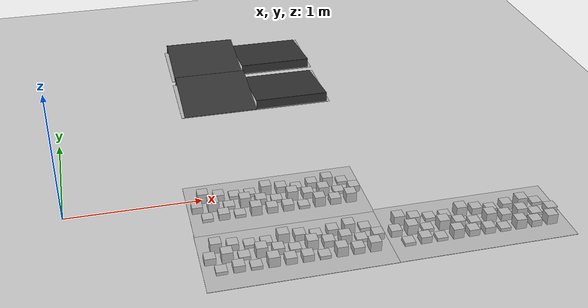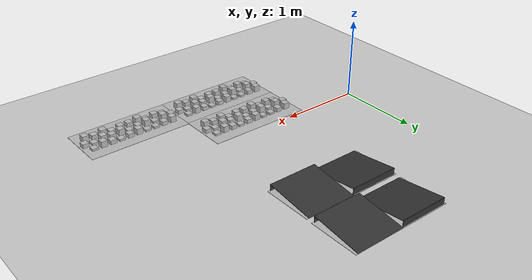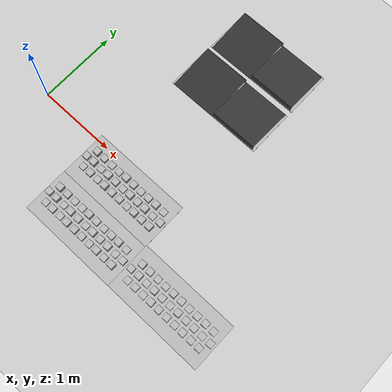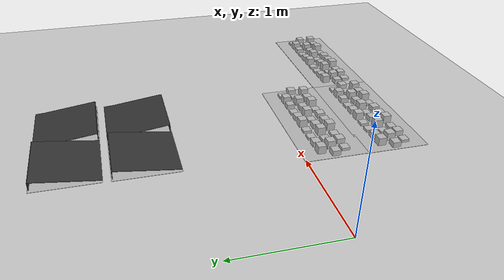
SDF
<sdf version="1.7">
 <world name="default">
  <model name="ground_plane">
   <static>1</static>
   <link name="link">
    <collision name="collision">
     <geometry><plane><normal>0 0 1</normal><size>100 100</size></plane></geometry>
     <surface>
      <contact><collide_bitmask>65535</collide_bitmask></contact>
      <friction><ode><mu>100</mu><mu2>50</mu2></ode></friction>
     </surface>
    </collision>
    <visual name="visual">
     <cast_shadows>0</cast_shadows>
     <geometry><plane><normal>0 0 1</normal><size>100 100</size></plane></geometry>
     <material>
      <script><uri>file://media/materials/scripts/gazebo.material</uri><name>Gazebo/Grey</name></script>
     </material>
    </visual>
   </link>
  </model>
  <model name="frc2016_roughterrain">
   <static>1</static>
   <link name="link">
    <visual name="platform">
     <pose>0 0 0.08269 0 -0 0</pose>
     <geometry><box><size>1.27 0.5969 0.003175</size></box></geometry>
    </visual>
    <collision name="platform">
     <pose>0 0 0.08269 0 -0 0</pose>
     <geometry><box><size>1.27 0.5969 0.003175</size></box></geometry>
    </collision>
    <visual name="row1_block1_sm">
     <pose>0.51435 0.1143 0.09698 0 -0 0</pose>
     <geometry><box><size>0.0762 0.0762 0.0254</size></box></geometry>
    </visual>
    <collision name="row1_block1_sm">
     <pose>0.51435 0.1143 0.09698 0 -0 0</pose>
     <geometry><box><size>0.0762 0.0762 0.0254</size></box></geometry>
    </collision>
    <visual name="row1_block2_lg">
     <pose>0.40005 0.1143 0.12238 0 -0 0</pose>
     <geometry><box><size>0.0762 0.0762 0.0762</size></box></geometry>
    </visual>
    <collision name="row1_block2_lg">
     <pose>0.40005 0.1143 0.12238 0 -0 0</pose>
     <geometry><box><size>0.0762 0.0762 0.0762</size></box></geometry>
    </collision>
    <visual name="row1_block3_md">
     <pose>0.28575 0.1143 0.10968 0 -0 0</pose>
     <geometry><box><size>0.0762 0.0762 0.0508</size></box></geometry>
    </visual>
    <collision name="row1_block3_md">
     <pose>0.28575 0.1143 0.10968 0 -0 0</pose>
     <geometry><box><size>0.0762 0.0762 0.0508</size></box></geometry>
    </collision>
    <visual name="row1_block4_sm">
     <pose>0.17145 0.1143 0.09698 0 -0 0</pose>
     <geometry><box><size>0.0762 0.0762 0.0254</size></box></geometry>
    </visual>
    <collision name="row1_block4_sm">
     <pose>0.17145 0.1143 0.09698 0 -0 0</pose>
     <geometry><box><size>0.0762 0.0762 0.0254</size></box></geometry>
    </collision>
    <visual name="row1_block5_md">
     <pose>0.05715 0.1143 0.10968 0 -0 0</pose>
     <geometry><box><size>0.0762 0.0762 0.0508</size></box></geometry>
    </visual>
    <collision name="row1_block5_md">
     <pose>0.05715 0.1143 0.10968 0 -0 0</pose>
     <geometry><box><size>0.0762 0.0762 0.0508</size></box></geometry>
    </collision>
    <visual name="row1_block6_lg">
     <pose>-0.05715 0.1143 0.12238 0 -0 0</pose>
     <geometry><box><size>0.0762 0.0762 0.0762</size></box></geometry>
    </visual>
    <collision name="row1_block6_lg">
     <pose>-0.05715 0.1143 0.12238 0 -0 0</pose>
     <geometry><box><size>0.0762 0.0762 0.0762</size></box></geometry>
    </collision>
    <visual name="row1_block7_sm">
     <pose>-0.17145 0.1143 0.09698 0 -0 0</pose>
     <geometry><box><size>0.0762 0.0762 0.0254</size></box></geometry>
    </visual>
    <collision name="row1_block7_sm">
     <pose>-0.17145 0.1143 0.09698 0 -0 0</pose>
     <geometry><box><size>0.0762 0.0762 0.0254</size></box></geometry>
    </collision>
    <visual name="row1_block8_sm">
     <pose>-0.28575 0.1143 0.09698 0 -0 0</pose>
     <geometry><box><size>0.0762 0.0762 0.0254</size></box></geometry>
    </visual>
    <collision name="row1_block8_sm">
     <pose>-0.28575 0.1143 0.09698 0 -0 0</pose>
     <geometry><box><size>0.0762 0.0762 0.0254</size></box></geometry>
    </collision>
    <visual name="row1_block9_md">
     <pose>-0.40005 0.1143 0.10968 0 -0 0</pose>
     <geometry><box><size>0.0762 0.0762 0.0508</size></box></geometry>
    </visual>
    <collision name="row1_block9_md">
     <pose>-0.40005 0.1143 0.10968 0 -0 0</pose>
     <geometry><box><size>0.0762 0.0762 0.0508</size></box></geometry>
    </collision>
    <visual name="row1_block10_lg">
     <pose>-0.51435 0.1143 0.12238 0 -0 0</pose>
     <geometry><box><size>0.0762 0.0762 0.0762</size></box></geometry>
    </visual>
    <collision name="row1_block10_lg">
     <pose>-0.51435 0.1143 0.12238 0 -0 0</pose>
     <geometry><box><size>0.0762 0.0762 0.0762</size></box></geometry>
    </collision>
    <visual name="row2_block1_md">
     <pose>0.5715 0 0.10968 0 -0 0</pose>
     <geometry><box><size>0.0762 0.0762 0.0508</size></box></geometry>
    </visual>
    <collision name="row2_block1_md">
     <pose>0.5715 0 0.10968 0 -0 0</pose>
     <geometry><box><size>0.0762 0.0762 0.0508</size></box></geometry>
    </collision>
    <visual name="row2_block2_sm">
     <pose>0.4572 0 0.09698 0 -0 0</pose>
     <geometry><box><size>0.0762 0.0762 0.0254</size></box></geometry>
    </visual>
    <collision name="row2_block2_sm">
     <pose>0.4572 0 0.09698 0 -0 0</pose>
     <geometry><box><size>0.0762 0.0762 0.0254</size></box></geometry>
    </collision>
    <visual name="row2_block3_lg">
     <pose>0.3429 0 0.12238 0 -0 0</pose>
     <geometry><box><size>0.0762 0.0762 0.0762</size></box></geometry>
    </visual>
    <collision name="row2_block3_lg">
     <pose>0.3429 0 0.12238 0 -0 0</pose>
     <geometry><box><size>0.0762 0.0762 0.0762</size></box></geometry>
    </collision>
    <visual name="row2_block4_md">
     <pose>0.2286 0 0.10968 0 -0 0</pose>
     <geometry><box><size>0.0762 0.0762 0.0508</size></box></geometry>
    </visual>
    <collision name="row2_block4_md">
     <pose>0.2286 0 0.10968 0 -0 0</pose>
     <geometry><box><size>0.0762 0.0762 0.0508</size></box></geometry>
    </collision>
    <visual name="row2_block5_lg">
     <pose>0.1143 0 0.12238 0 -0 0</pose>
     <geometry><box><size>0.0762 0.0762 0.0762</size></box></geometry>
    </visual>
    <collision name="row2_block5_lg">
     <pose>0.1143 0 0.12238 0 -0 0</pose>
     <geometry><box><size>0.0762 0.0762 0.0762</size></box></geometry>
    </collision>
    <visual name="row2_block6_sm">
     <pose>0 0 0.09698 0 -0 0</pose>
     <geometry><box><size>0.0762 0.0762 0.0254</size></box></geometry>
    </visual>
    <collision name="row2_block6_sm">
     <pose>0 0 0.09698 0 -0 0</pose>
     <geometry><box><size>0.0762 0.0762 0.0254</size></box></geometry>
    </collision>
    <visual name="row2_block7_md">
     <pose>-0.1143 0 0.10968 0 -0 0</pose>
     <geometry><box><size>0.0762 0.0762 0.0508</size></box></geometry>
    </visual>
    <collision name="row2_block7_md">
     <pose>-0.1143 0 0.10968 0 -0 0</pose>
     <geometry><box><size>0.0762 0.0762 0.0508</size></box></geometry>
    </collision>
    <visual name="row2_block8_lg">
     <pose>-0.2286 0 0.12238 0 -0 0</pose>
     <geometry><box><size>0.0762 0.0762 0.0762</size></box></geometry>
    </visual>
    <collision name="row2_block8_lg">
     <pose>-0.2286 0 0.12238 0 -0 0</pose>
     <geometry><box><size>0.0762 0.0762 0.0762</size></box></geometry>
    </collision>
    <visual name="row2_block9_sm">
     <pose>-0.3429 0 0.09698 0 -0 0</pose>
     <geometry><box><size>0.0762 0.0762 0.0254</size></box></geometry>
    </visual>
    <collision name="row2_block9_sm">
     <pose>-0.3429 0 0.09698 0 -0 0</pose>
     <geometry><box><size>0.0762 0.0762 0.0254</size></box></geometry>
    </collision>
    <visual name="row2_block10_lg">
     <pose>-0.4572 0 0.12238 0 -0 0</pose>
     <geometry><box><size>0.0762 0.0762 0.0762</size></box></geometry>
    </visual>
    <collision name="row2_block10_lg">
     <pose>-0.4572 0 0.12238 0 -0 0</pose>
     <geometry><box><size>0.0762 0.0762 0.0762</size></box></geometry>
    </collision>
    <visual name="row2_block11_md">
     <pose>-0.5715 0 0.10968 0 -0 0</pose>
     <geometry><box><size>0.0762 0.0762 0.0508</size></box></geometry>
    </visual>
    <collision name="row2_block11_md">
     <pose>-0.5715 0 0.10968 0 -0 0</pose>
     <geometry><box><size>0.0762 0.0762 0.0508</size></box></geometry>
    </collision>
    <visual name="row3_block1_lg">
     <pose>0.51435 -0.1143 0.12238 0 -0 0</pose>
     <geometry><box><size>0.0762 0.0762 0.0762</size></box></geometry>
    </visual>
    <collision name="row3_block1_lg">
     <pose>0.51435 -0.1143 0.12238 0 -0 0</pose>
     <geometry><box><size>0.0762 0.0762 0.0762</size></box></geometry>
    </collision>
    <visual name="row3_block2_md">
     <pose>0.40005 -0.1143 0.10968 0 -0 0</pose>
     <geometry><box><size>0.0762 0.0762 0.0508</size></box></geometry>
    </visual>
    <collision name="row3_block2_md">
     <pose>0.40005 -0.1143 0.10968 0 -0 0</pose>
     <geometry><box><size>0.0762 0.0762 0.0508</size></box></geometry>
    </collision>
    <visual name="row3_block3_lg">
     <pose>0.28575 -0.1143 0.12238 0 -0 0</pose>
     <geometry><box><size>0.0762 0.0762 0.0762</size></box></geometry>
    </visual>
    <collision name="row3_block3_lg">
     <pose>0.28575 -0.1143 0.12238 0 -0 0</pose>
     <geometry><box><size>0.0762 0.0762 0.0762</size></box></geometry>
    </collision>
    <visual name="row3_block4_sm">
     <pose>0.17145 -0.1143 0.09698 0 -0 0</pose>
     <geometry><box><size>0.0762 0.0762 0.0254</size></box></geometry>
    </visual>
    <collision name="row3_block4_sm">
     <pose>0.17145 -0.1143 0.09698 0 -0 0</pose>
     <geometry><box><size>0.0762 0.0762 0.0254</size></box></geometry>
    </collision>
    <visual name="row3_block5_md">
     <pose>0.05715 -0.1143 0.10968 0 -0 0</pose>
     <geometry><box><size>0.0762 0.0762 0.0508</size></box></geometry>
    </visual>
    <collision name="row3_block5_md">
     <pose>0.05715 -0.1143 0.10968 0 -0 0</pose>
     <geometry><box><size>0.0762 0.0762 0.0508</size></box></geometry>
    </collision>
    <visual name="row3_block6_md">
     <pose>-0.05715 -0.1143 0.10968 0 -0 0</pose>
     <geometry><box><size>0.0762 0.0762 0.0508</size></box></geometry>
    </visual>
    <collision name="row3_block6_md">
     <pose>-0.05715 -0.1143 0.10968 0 -0 0</pose>
     <geometry><box><size>0.0762 0.0762 0.0508</size></box></geometry>
    </collision>
    <visual name="row3_block7_lg">
     <pose>-0.17145 -0.1143 0.12238 0 -0 0</pose>
     <geometry><box><size>0.0762 0.0762 0.0762</size></box></geometry>
    </visual>
    <collision name="row3_block7_lg">
     <pose>-0.17145 -0.1143 0.12238 0 -0 0</pose>
     <geometry><box><size>0.0762 0.0762 0.0762</size></box></geometry>
    </collision>
    <visual name="row3_block8_sm">
     <pose>-0.28575 -0.1143 0.09698 0 -0 0</pose>
     <geometry><box><size>0.0762 0.0762 0.0254</size></box></geometry>
    </visual>
    <collision name="row3_block8_sm">
     <pose>-0.28575 -0.1143 0.09698 0 -0 0</pose>
     <geometry><box><size>0.0762 0.0762 0.0254</size></box></geometry>
    </collision>
    <visual name="row3_block9_md">
     <pose>-0.40005 -0.1143 0.10968 0 -0 0</pose>
     <geometry><box><size>0.0762 0.0762 0.0508</size></box></geometry>
    </visual>
    <collision name="row3_block9_md">
     <pose>-0.40005 -0.1143 0.10968 0 -0 0</pose>
     <geometry><box><size>0.0762 0.0762 0.0508</size></box></geometry>
    </collision>
    <visual name="row3_block10_sm">
     <pose>-0.51435 -0.1143 0.09698 0 -0 0</pose>
     <geometry><box><size>0.0762 0.0762 0.0254</size></box></geometry>
    </visual>
    <collision name="row3_block10_sm">
     <pose>-0.51435 -0.1143 0.09698 0 -0 0</pose>
     <geometry><box><size>0.0762 0.0762 0.0254</size></box></geometry>
    </collision>
   </link>
   <pose>1.50047 -0.238408 0 0 -0 0</pose>
  </model>
  <model name="frc2016_roughterrain_0">
   <static>1</static>
   <link name="link">
    <visual name="platform">
     <pose>0 0 0.08269 0 -0 0</pose>
     <geometry><box><size>1.27 0.5969 0.003175</size></box></geometry>
    </visual>
    <collision name="platform">
     <pose>0 0 0.08269 0 -0 0</pose>
     <geometry><box><size>1.27 0.5969 0.003175</size></box></geometry>
    </collision>
    <visual name="row1_block1_sm">
     <pose>0.51435 0.1143 0.09698 0 -0 0</pose>
     <geometry><box><size>0.0762 0.0762 0.0254</size></box></geometry>
    </visual>
    <collision name="row1_block1_sm">
     <pose>0.51435 0.1143 0.09698 0 -0 0</pose>
     <geometry><box><size>0.0762 0.0762 0.0254</size></box></geometry>
    </collision>
    <visual name="row1_block2_lg">
     <pose>0.40005 0.1143 0.12238 0 -0 0</pose>
     <geometry><box><size>0.0762 0.0762 0.0762</size></box></geometry>
    </visual>
    <collision name="row1_block2_lg">
     <pose>0.40005 0.1143 0.12238 0 -0 0</pose>
     <geometry><box><size>0.0762 0.0762 0.0762</size></box></geometry>
    </collision>
    <visual name="row1_block3_md">
     <pose>0.28575 0.1143 0.10968 0 -0 0</pose>
     <geometry><box><size>0.0762 0.0762 0.0508</size></box></geometry>
    </visual>
    <collision name="row1_block3_md">
     <pose>0.28575 0.1143 0.10968 0 -0 0</pose>
     <geometry><box><size>0.0762 0.0762 0.0508</size></box></geometry>
    </collision>
    <visual name="row1_block4_sm">
     <pose>0.17145 0.1143 0.09698 0 -0 0</pose>
     <geometry><box><size>0.0762 0.0762 0.0254</size></box></geometry>
    </visual>
    <collision name="row1_block4_sm">
     <pose>0.17145 0.1143 0.09698 0 -0 0</pose>
     <geometry><box><size>0.0762 0.0762 0.0254</size></box></geometry>
    </collision>
    <visual name="row1_block5_md">
     <pose>0.05715 0.1143 0.10968 0 -0 0</pose>
     <geometry><box><size>0.0762 0.0762 0.0508</size></box></geometry>
    </visual>
    <collision name="row1_block5_md">
     <pose>0.05715 0.1143 0.10968 0 -0 0</pose>
     <geometry><box><size>0.0762 0.0762 0.0508</size></box></geometry>
    </collision>
    <visual name="row1_block6_lg">
     <pose>-0.05715 0.1143 0.12238 0 -0 0</pose>
     <geometry><box><size>0.0762 0.0762 0.0762</size></box></geometry>
    </visual>
    <collision name="row1_block6_lg">
     <pose>-0.05715 0.1143 0.12238 0 -0 0</pose>
     <geometry><box><size>0.0762 0.0762 0.0762</size></box></geometry>
    </collision>
    <visual name="row1_block7_sm">
     <pose>-0.17145 0.1143 0.09698 0 -0 0</pose>
     <geometry><box><size>0.0762 0.0762 0.0254</size></box></geometry>
    </visual>
    <collision name="row1_block7_sm">
     <pose>-0.17145 0.1143 0.09698 0 -0 0</pose>
     <geometry><box><size>0.0762 0.0762 0.0254</size></box></geometry>
    </collision>
    <visual name="row1_block8_sm">
     <pose>-0.28575 0.1143 0.09698 0 -0 0</pose>
     <geometry><box><size>0.0762 0.0762 0.0254</size></box></geometry>
    </visual>
    <collision name="row1_block8_sm">
     <pose>-0.28575 0.1143 0.09698 0 -0 0</pose>
     <geometry><box><size>0.0762 0.0762 0.0254</size></box></geometry>
    </collision>
    <visual name="row1_block9_md">
     <pose>-0.40005 0.1143 0.10968 0 -0 0</pose>
     <geometry><box><size>0.0762 0.0762 0.0508</size></box></geometry>
    </visual>
    <collision name="row1_block9_md">
     <pose>-0.40005 0.1143 0.10968 0 -0 0</pose>
     <geometry><box><size>0.0762 0.0762 0.0508</size></box></geometry>
    </collision>
    <visual name="row1_block10_lg">
     <pose>-0.51435 0.1143 0.12238 0 -0 0</pose>
     <geometry><box><size>0.0762 0.0762 0.0762</size></box></geometry>
    </visual>
    <collision name="row1_block10_lg">
     <pose>-0.51435 0.1143 0.12238 0 -0 0</pose>
     <geometry><box><size>0.0762 0.0762 0.0762</size></box></geometry>
    </collision>
    <visual name="row2_block1_md">
     <pose>0.5715 0 0.10968 0 -0 0</pose>
     <geometry><box><size>0.0762 0.0762 0.0508</size></box></geometry>
    </visual>
    <collision name="row2_block1_md">
     <pose>0.5715 0 0.10968 0 -0 0</pose>
     <geometry><box><size>0.0762 0.0762 0.0508</size></box></geometry>
    </collision>
    <visual name="row2_block2_sm">
     <pose>0.4572 0 0.09698 0 -0 0</pose>
     <geometry><box><size>0.0762 0.0762 0.0254</size></box></geometry>
    </visual>
    <collision name="row2_block2_sm">
     <pose>0.4572 0 0.09698 0 -0 0</pose>
     <geometry><box><size>0.0762 0.0762 0.0254</size></box></geometry>
    </collision>
    <visual name="row2_block3_lg">
     <pose>0.3429 0 0.12238 0 -0 0</pose>
     <geometry><box><size>0.0762 0.0762 0.0762</size></box></geometry>
    </visual>
    <collision name="row2_block3_lg">
     <pose>0.3429 0 0.12238 0 -0 0</pose>
     <geometry><box><size>0.0762 0.0762 0.0762</size></box></geometry>
    </collision>
    <visual name="row2_block4_md">
     <pose>0.2286 0 0.10968 0 -0 0</pose>
     <geometry><box><size>0.0762 0.0762 0.0508</size></box></geometry>
    </visual>
    <collision name="row2_block4_md">
     <pose>0.2286 0 0.10968 0 -0 0</pose>
     <geometry><box><size>0.0762 0.0762 0.0508</size></box></geometry>
    </collision>
    <visual name="row2_block5_lg">
     <pose>0.1143 0 0.12238 0 -0 0</pose>
     <geometry><box><size>0.0762 0.0762 0.0762</size></box></geometry>
    </visual>
    <collision name="row2_block5_lg">
     <pose>0.1143 0 0.12238 0 -0 0</pose>
     <geometry><box><size>0.0762 0.0762 0.0762</size></box></geometry>
    </collision>
    <visual name="row2_block6_sm">
     <pose>0 0 0.09698 0 -0 0</pose>
     <geometry><box><size>0.0762 0.0762 0.0254</size></box></geometry>
    </visual>
    <collision name="row2_block6_sm">
     <pose>0 0 0.09698 0 -0 0</pose>
     <geometry><box><size>0.0762 0.0762 0.0254</size></box></geometry>
    </collision>
    <visual name="row2_block7_md">
     <pose>-0.1143 0 0.10968 0 -0 0</pose>
     <geometry><box><size>0.0762 0.0762 0.0508</size></box></geometry>
    </visual>
    <collision name="row2_block7_md">
     <pose>-0.1143 0 0.10968 0 -0 0</pose>
     <geometry><box><size>0.0762 0.0762 0.0508</size></box></geometry>
    </collision>
    <visual name="row2_block8_lg">
     <pose>-0.2286 0 0.12238 0 -0 0</pose>
     <geometry><box><size>0.0762 0.0762 0.0762</size></box></geometry>
    </visual>
    <collision name="row2_block8_lg">
     <pose>-0.2286 0 0.12238 0 -0 0</pose>
     <geometry><box><size>0.0762 0.0762 0.0762</size></box></geometry>
    </collision>
    <visual name="row2_block9_sm">
     <pose>-0.3429 0 0.09698 0 -0 0</pose>
     <geometry><box><size>0.0762 0.0762 0.0254</size></box></geometry>
    </visual>
    <collision name="row2_block9_sm">
     <pose>-0.3429 0 0.09698 0 -0 0</pose>
     <geometry><box><size>0.0762 0.0762 0.0254</size></box></geometry>
    </collision>
    <visual name="row2_block10_lg">
     <pose>-0.4572 0 0.12238 0 -0 0</pose>
     <geometry><box><size>0.0762 0.0762 0.0762</size></box></geometry>
    </visual>
    <collision name="row2_block10_lg">
     <pose>-0.4572 0 0.12238 0 -0 0</pose>
     <geometry><box><size>0.0762 0.0762 0.0762</size></box></geometry>
    </collision>
    <visual name="row2_block11_md">
     <pose>-0.5715 0 0.10968 0 -0 0</pose>
     <geometry><box><size>0.0762 0.0762 0.0508</size></box></geometry>
    </visual>
    <collision name="row2_block11_md">
     <pose>-0.5715 0 0.10968 0 -0 0</pose>
     <geometry><box><size>0.0762 0.0762 0.0508</size></box></geometry>
    </collision>
    <visual name="row3_block1_lg">
     <pose>0.51435 -0.1143 0.12238 0 -0 0</pose>
     <geometry><box><size>0.0762 0.0762 0.0762</size></box></geometry>
    </visual>
    <collision name="row3_block1_lg">
     <pose>0.51435 -0.1143 0.12238 0 -0 0</pose>
     <geometry><box><size>0.0762 0.0762 0.0762</size></box></geometry>
    </collision>
    <visual name="row3_block2_md">
     <pose>0.40005 -0.1143 0.10968 0 -0 0</pose>
     <geometry><box><size>0.0762 0.0762 0.0508</size></box></geometry>
    </visual>
    <collision name="row3_block2_md">
     <pose>0.40005 -0.1143 0.10968 0 -0 0</pose>
     <geometry><box><size>0.0762 0.0762 0.0508</size></box></geometry>
    </collision>
    <visual name="row3_block3_lg">
     <pose>0.28575 -0.1143 0.12238 0 -0 0</pose>
     <geometry><box><size>0.0762 0.0762 0.0762</size></box></geometry>
    </visual>
    <collision name="row3_block3_lg">
     <pose>0.28575 -0.1143 0.12238 0 -0 0</pose>
     <geometry><box><size>0.0762 0.0762 0.0762</size></box></geometry>
    </collision>
    <visual name="row3_block4_sm">
     <pose>0.17145 -0.1143 0.09698 0 -0 0</pose>
     <geometry><box><size>0.0762 0.0762 0.0254</size></box></geometry>
    </visual>
    <collision name="row3_block4_sm">
     <pose>0.17145 -0.1143 0.09698 0 -0 0</pose>
     <geometry><box><size>0.0762 0.0762 0.0254</size></box></geometry>
    </collision>
    <visual name="row3_block5_md">
     <pose>0.05715 -0.1143 0.10968 0 -0 0</pose>
     <geometry><box><size>0.0762 0.0762 0.0508</size></box></geometry>
    </visual>
    <collision name="row3_block5_md">
     <pose>0.05715 -0.1143 0.10968 0 -0 0</pose>
     <geometry><box><size>0.0762 0.0762 0.0508</size></box></geometry>
    </collision>
    <visual name="row3_block6_md">
     <pose>-0.05715 -0.1143 0.10968 0 -0 0</pose>
     <geometry><box><size>0.0762 0.0762 0.0508</size></box></geometry>
    </visual>
    <collision name="row3_block6_md">
     <pose>-0.05715 -0.1143 0.10968 0 -0 0</pose>
     <geometry><box><size>0.0762 0.0762 0.0508</size></box></geometry>
    </collision>
    <visual name="row3_block7_lg">
     <pose>-0.17145 -0.1143 0.12238 0 -0 0</pose>
     <geometry><box><size>0.0762 0.0762 0.0762</size></box></geometry>
    </visual>
    <collision name="row3_block7_lg">
     <pose>-0.17145 -0.1143 0.12238 0 -0 0</pose>
     <geometry><box><size>0.0762 0.0762 0.0762</size></box></geometry>
    </collision>
    <visual name="row3_block8_sm">
     <pose>-0.28575 -0.1143 0.09698 0 -0 0</pose>
     <geometry><box><size>0.0762 0.0762 0.0254</size></box></geometry>
    </visual>
    <collision name="row3_block8_sm">
     <pose>-0.28575 -0.1143 0.09698 0 -0 0</pose>
     <geometry><box><size>0.0762 0.0762 0.0254</size></box></geometry>
    </collision>
    <visual name="row3_block9_md">
     <pose>-0.40005 -0.1143 0.10968 0 -0 0</pose>
     <geometry><box><size>0.0762 0.0762 0.0508</size></box></geometry>
    </visual>
    <collision name="row3_block9_md">
     <pose>-0.40005 -0.1143 0.10968 0 -0 0</pose>
     <geometry><box><size>0.0762 0.0762 0.0508</size></box></geometry>
    </collision>
    <visual name="row3_block10_sm">
     <pose>-0.51435 -0.1143 0.09698 0 -0 0</pose>
     <geometry><box><size>0.0762 0.0762 0.0254</size></box></geometry>
    </visual>
    <collision name="row3_block10_sm">
     <pose>-0.51435 -0.1143 0.09698 0 -0 0</pose>
     <geometry><box><size>0.0762 0.0762 0.0254</size></box></geometry>
    </collision>
   </link>
   <pose>1.49738 -0.816433 0 0 -0 0</pose>
  </model>
  <model name="frc2016_roughterrain_2">
   <static>1</static>
   <link name="link">
    <visual name="platform">
     <pose>0 0 0.08269 0 -0 0</pose>
     <geometry><box><size>1.27 0.5969 0.003175</size></box></geometry>
    </visual>
    <collision name="platform">
     <pose>0 0 0.08269 0 -0 0</pose>
     <geometry><box><size>1.27 0.5969 0.003175</size></box></geometry>
    </collision>
    <visual name="row1_block1_sm">
     <pose>0.51435 0.1143 0.09698 0 -0 0</pose>
     <geometry><box><size>0.0762 0.0762 0.0254</size></box></geometry>
    </visual>
    <collision name="row1_block1_sm">
     <pose>0.51435 0.1143 0.09698 0 -0 0</pose>
     <geometry><box><size>0.0762 0.0762 0.0254</size></box></geometry>
    </collision>
    <visual name="row1_block2_lg">
     <pose>0.40005 0.1143 0.12238 0 -0 0</pose>
     <geometry><box><size>0.0762 0.0762 0.0762</size></box></geometry>
    </visual>
    <collision name="row1_block2_lg">
     <pose>0.40005 0.1143 0.12238 0 -0 0</pose>
     <geometry><box><size>0.0762 0.0762 0.0762</size></box></geometry>
    </collision>
    <visual name="row1_block3_md">
     <pose>0.28575 0.1143 0.10968 0 -0 0</pose>
     <geometry><box><size>0.0762 0.0762 0.0508</size></box></geometry>
    </visual>
    <collision name="row1_block3_md">
     <pose>0.28575 0.1143 0.10968 0 -0 0</pose>
     <geometry><box><size>0.0762 0.0762 0.0508</size></box></geometry>
    </collision>
    <visual name="row1_block4_sm">
     <pose>0.17145 0.1143 0.09698 0 -0 0</pose>
     <geometry><box><size>0.0762 0.0762 0.0254</size></box></geometry>
    </visual>
    <collision name="row1_block4_sm">
     <pose>0.17145 0.1143 0.09698 0 -0 0</pose>
     <geometry><box><size>0.0762 0.0762 0.0254</size></box></geometry>
    </collision>
    <visual name="row1_block5_md">
     <pose>0.05715 0.1143 0.10968 0 -0 0</pose>
     <geometry><box><size>0.0762 0.0762 0.0508</size></box></geometry>
    </visual>
    <collision name="row1_block5_md">
     <pose>0.05715 0.1143 0.10968 0 -0 0</pose>
     <geometry><box><size>0.0762 0.0762 0.0508</size></box></geometry>
    </collision>
    <visual name="row1_block6_lg">
     <pose>-0.05715 0.1143 0.12238 0 -0 0</pose>
     <geometry><box><size>0.0762 0.0762 0.0762</size></box></geometry>
    </visual>
    <collision name="row1_block6_lg">
     <pose>-0.05715 0.1143 0.12238 0 -0 0</pose>
     <geometry><box><size>0.0762 0.0762 0.0762</size></box></geometry>
    </collision>
    <visual name="row1_block7_sm">
     <pose>-0.17145 0.1143 0.09698 0 -0 0</pose>
     <geometry><box><size>0.0762 0.0762 0.0254</size></box></geometry>
    </visual>
    <collision name="row1_block7_sm">
     <pose>-0.17145 0.1143 0.09698 0 -0 0</pose>
     <geometry><box><size>0.0762 0.0762 0.0254</size></box></geometry>
    </collision>
    <visual name="row1_block8_sm">
     <pose>-0.28575 0.1143 0.09698 0 -0 0</pose>
     <geometry><box><size>0.0762 0.0762 0.0254</size></box></geometry>
    </visual>
    <collision name="row1_block8_sm">
     <pose>-0.28575 0.1143 0.09698 0 -0 0</pose>
     <geometry><box><size>0.0762 0.0762 0.0254</size></box></geometry>
    </collision>
    <visual name="row1_block9_md">
     <pose>-0.40005 0.1143 0.10968 0 -0 0</pose>
     <geometry><box><size>0.0762 0.0762 0.0508</size></box></geometry>
    </visual>
    <collision name="row1_block9_md">
     <pose>-0.40005 0.1143 0.10968 0 -0 0</pose>
     <geometry><box><size>0.0762 0.0762 0.0508</size></box></geometry>
    </collision>
    <visual name="row1_block10_lg">
     <pose>-0.51435 0.1143 0.12238 0 -0 0</pose>
     <geometry><box><size>0.0762 0.0762 0.0762</size></box></geometry>
    </visual>
    <collision name="row1_block10_lg">
     <pose>-0.51435 0.1143 0.12238 0 -0 0</pose>
     <geometry><box><size>0.0762 0.0762 0.0762</size></box></geometry>
    </collision>
    <visual name="row2_block1_md">
     <pose>0.5715 0 0.10968 0 -0 0</pose>
     <geometry><box><size>0.0762 0.0762 0.0508</size></box></geometry>
    </visual>
    <collision name="row2_block1_md">
     <pose>0.5715 0 0.10968 0 -0 0</pose>
     <geometry><box><size>0.0762 0.0762 0.0508</size></box></geometry>
    </collision>
    <visual name="row2_block2_sm">
     <pose>0.4572 0 0.09698 0 -0 0</pose>
     <geometry><box><size>0.0762 0.0762 0.0254</size></box></geometry>
    </visual>
    <collision name="row2_block2_sm">
     <pose>0.4572 0 0.09698 0 -0 0</pose>
     <geometry><box><size>0.0762 0.0762 0.0254</size></box></geometry>
    </collision>
    <visual name="row2_block3_lg">
     <pose>0.3429 0 0.12238 0 -0 0</pose>
     <geometry><box><size>0.0762 0.0762 0.0762</size></box></geometry>
    </visual>
    <collision name="row2_block3_lg">
     <pose>0.3429 0 0.12238 0 -0 0</pose>
     <geometry><box><size>0.0762 0.0762 0.0762</size></box></geometry>
    </collision>
    <visual name="row2_block4_md">
     <pose>0.2286 0 0.10968 0 -0 0</pose>
     <geometry><box><size>0.0762 0.0762 0.0508</size></box></geometry>
    </visual>
    <collision name="row2_block4_md">
     <pose>0.2286 0 0.10968 0 -0 0</pose>
     <geometry><box><size>0.0762 0.0762 0.0508</size></box></geometry>
    </collision>
    <visual name="row2_block5_lg">
     <pose>0.1143 0 0.12238 0 -0 0</pose>
     <geometry><box><size>0.0762 0.0762 0.0762</size></box></geometry>
    </visual>
    <collision name="row2_block5_lg">
     <pose>0.1143 0 0.12238 0 -0 0</pose>
     <geometry><box><size>0.0762 0.0762 0.0762</size></box></geometry>
    </collision>
    <visual name="row2_block6_sm">
     <pose>0 0 0.09698 0 -0 0</pose>
     <geometry><box><size>0.0762 0.0762 0.0254</size></box></geometry>
    </visual>
    <collision name="row2_block6_sm">
     <pose>0 0 0.09698 0 -0 0</pose>
     <geometry><box><size>0.0762 0.0762 0.0254</size></box></geometry>
    </collision>
    <visual name="row2_block7_md">
     <pose>-0.1143 0 0.10968 0 -0 0</pose>
     <geometry><box><size>0.0762 0.0762 0.0508</size></box></geometry>
    </visual>
    <collision name="row2_block7_md">
     <pose>-0.1143 0 0.10968 0 -0 0</pose>
     <geometry><box><size>0.0762 0.0762 0.0508</size></box></geometry>
    </collision>
    <visual name="row2_block8_lg">
     <pose>-0.2286 0 0.12238 0 -0 0</pose>
     <geometry><box><size>0.0762 0.0762 0.0762</size></box></geometry>
    </visual>
    <collision name="row2_block8_lg">
     <pose>-0.2286 0 0.12238 0 -0 0</pose>
     <geometry><box><size>0.0762 0.0762 0.0762</size></box></geometry>
    </collision>
    <visual name="row2_block9_sm">
     <pose>-0.3429 0 0.09698 0 -0 0</pose>
     <geometry><box><size>0.0762 0.0762 0.0254</size></box></geometry>
    </visual>
    <collision name="row2_block9_sm">
     <pose>-0.3429 0 0.09698 0 -0 0</pose>
     <geometry><box><size>0.0762 0.0762 0.0254</size></box></geometry>
    </collision>
    <visual name="row2_block10_lg">
     <pose>-0.4572 0 0.12238 0 -0 0</pose>
     <geometry><box><size>0.0762 0.0762 0.0762</size></box></geometry>
    </visual>
    <collision name="row2_block10_lg">
     <pose>-0.4572 0 0.12238 0 -0 0</pose>
     <geometry><box><size>0.0762 0.0762 0.0762</size></box></geometry>
    </collision>
    <visual name="row2_block11_md">
     <pose>-0.5715 0 0.10968 0 -0 0</pose>
     <geometry><box><size>0.0762 0.0762 0.0508</size></box></geometry>
    </visual>
    <collision name="row2_block11_md">
     <pose>-0.5715 0 0.10968 0 -0 0</pose>
     <geometry><box><size>0.0762 0.0762 0.0508</size></box></geometry>
    </collision>
    <visual name="row3_block1_lg">
     <pose>0.51435 -0.1143 0.12238 0 -0 0</pose>
     <geometry><box><size>0.0762 0.0762 0.0762</size></box></geometry>
    </visual>
    <collision name="row3_block1_lg">
     <pose>0.51435 -0.1143 0.12238 0 -0 0</pose>
     <geometry><box><size>0.0762 0.0762 0.0762</size></box></geometry>
    </collision>
    <visual name="row3_block2_md">
     <pose>0.40005 -0.1143 0.10968 0 -0 0</pose>
     <geometry><box><size>0.0762 0.0762 0.0508</size></box></geometry>
    </visual>
    <collision name="row3_block2_md">
     <pose>0.40005 -0.1143 0.10968 0 -0 0</pose>
     <geometry><box><size>0.0762 0.0762 0.0508</size></box></geometry>
    </collision>
    <visual name="row3_block3_lg">
     <pose>0.28575 -0.1143 0.12238 0 -0 0</pose>
     <geometry><box><size>0.0762 0.0762 0.0762</size></box></geometry>
    </visual>
    <collision name="row3_block3_lg">
     <pose>0.28575 -0.1143 0.12238 0 -0 0</pose>
     <geometry><box><size>0.0762 0.0762 0.0762</size></box></geometry>
    </collision>
    <visual name="row3_block4_sm">
     <pose>0.17145 -0.1143 0.09698 0 -0 0</pose>
     <geometry><box><size>0.0762 0.0762 0.0254</size></box></geometry>
    </visual>
    <collision name="row3_block4_sm">
     <pose>0.17145 -0.1143 0.09698 0 -0 0</pose>
     <geometry><box><size>0.0762 0.0762 0.0254</size></box></geometry>
    </collision>
    <visual name="row3_block5_md">
     <pose>0.05715 -0.1143 0.10968 0 -0 0</pose>
     <geometry><box><size>0.0762 0.0762 0.0508</size></box></geometry>
    </visual>
    <collision name="row3_block5_md">
     <pose>0.05715 -0.1143 0.10968 0 -0 0</pose>
     <geometry><box><size>0.0762 0.0762 0.0508</size></box></geometry>
    </collision>
    <visual name="row3_block6_md">
     <pose>-0.05715 -0.1143 0.10968 0 -0 0</pose>
     <geometry><box><size>0.0762 0.0762 0.0508</size></box></geometry>
    </visual>
    <collision name="row3_block6_md">
     <pose>-0.05715 -0.1143 0.10968 0 -0 0</pose>
     <geometry><box><size>0.0762 0.0762 0.0508</size></box></geometry>
    </collision>
    <visual name="row3_block7_lg">
     <pose>-0.17145 -0.1143 0.12238 0 -0 0</pose>
     <geometry><box><size>0.0762 0.0762 0.0762</size></box></geometry>
    </visual>
    <collision name="row3_block7_lg">
     <pose>-0.17145 -0.1143 0.12238 0 -0 0</pose>
     <geometry><box><size>0.0762 0.0762 0.0762</size></box></geometry>
    </collision>
    <visual name="row3_block8_sm">
     <pose>-0.28575 -0.1143 0.09698 0 -0 0</pose>
     <geometry><box><size>0.0762 0.0762 0.0254</size></box></geometry>
    </visual>
    <collision name="row3_block8_sm">
     <pose>-0.28575 -0.1143 0.09698 0 -0 0</pose>
     <geometry><box><size>0.0762 0.0762 0.0254</size></box></geometry>
    </collision>
    <visual name="row3_block9_md">
     <pose>-0.40005 -0.1143 0.10968 0 -0 0</pose>
     <geometry><box><size>0.0762 0.0762 0.0508</size></box></geometry>
    </visual>
    <collision name="row3_block9_md">
     <pose>-0.40005 -0.1143 0.10968 0 -0 0</pose>
     <geometry><box><size>0.0762 0.0762 0.0508</size></box></geometry>
    </collision>
    <visual name="row3_block10_sm">
     <pose>-0.51435 -0.1143 0.09698 0 -0 0</pose>
     <geometry><box><size>0.0762 0.0762 0.0254</size></box></geometry>
    </visual>
    <collision name="row3_block10_sm">
     <pose>-0.51435 -0.1143 0.09698 0 -0 0</pose>
     <geometry><box><size>0.0762 0.0762 0.0254</size></box></geometry>
    </collision>
   </link>
   <pose>2.76666 -0.81481 0 0 -0 0</pose>
  </model>
  <model name="frc2016_ramparts">
   <static>1</static>
   <link name="link">
    <visual name="platform">
     <pose>0 0 0.06967 0 -0 0</pose>
     <geometry><box><size>1.27 0.5969 0.003175</size></box></geometry>
    </visual>
    <collision name="platform">
     <pose>0 0 0.06967 0 -0 0</pose>
     <geometry><box><size>1.27 0.5969 0.003175</size></box></geometry>
    </collision>
    <visual name="ramp1">
     <pose>0.30472 0.00588 0.1109 -0.13 0 0</pose>
     <geometry><box><size>0.60957 0.588891 0.00462</size></box></geometry>
     <material><ambient>0.2 0.2 0.2 1</ambient><diffuse>0.2 0.2 0.2 1</diffuse></material>
    </visual>
    <collision name="ramp1">
     <pose>0.30472 0.00588 0.1109 -0.13 0 0</pose>
     <geometry><box><size>0.60957 0.588891 0.00462</size></box></geometry>
    </collision>
    <visual name="up1">
     <pose>0.30472 -0.28806 0.11072 0 -0 0</pose>
     <geometry><box><size>0.60957 0.00462 0.07872</size></box></geometry>
     <material><ambient>0.2 0.2 0.2 1</ambient><diffuse>0.2 0.2 0.2 1</diffuse></material>
    </visual>
    <collision name="up1">
     <pose>0.30472 -0.28806 0.11072 0 -0 0</pose>
     <geometry><box><size>0.60957 0.00462 0.07872</size></box></geometry>
    </collision>
    <visual name="ramp2">
     <pose>-0.30472 -0.00619 0.1109 0.13 -0 0</pose>
     <geometry><box><size>0.60957 0.588891 0.00462</size></box></geometry>
     <material><ambient>0.2 0.2 0.2 1</ambient><diffuse>0.2 0.2 0.2 1</diffuse></material>
    </visual>
    <collision name="ramp2">
     <pose>-0.30472 -0.00619 0.1109 0.13 -0 0</pose>
     <geometry><box><size>0.60957 0.588891 0.00462</size></box></geometry>
    </collision>
    <visual name="up2">
     <pose>-0.30472 0.28806 0.11072 0 -0 0</pose>
     <geometry><box><size>0.60957 0.00462 0.07872</size></box></geometry>
     <material><ambient>0.2 0.2 0.2 1</ambient><diffuse>0.2 0.2 0.2 1</diffuse></material>
    </visual>
    <collision name="up2">
     <pose>-0.30472 0.28806 0.11072 0 -0 0</pose>
     <geometry><box><size>0.60957 0.00462 0.07872</size></box></geometry>
    </collision>
   </link>
   <pose>1.63486 1.4004 0 0 -0 0</pose>
  </model>
  <model name="frc2016_ramparts_0">
   <static>1</static>
   <link name="link">
    <visual name="platform">
     <pose>0 0 0.06967 0 -0 0</pose>
     <geometry><box><size>1.27 0.5969 0.003175</size></box></geometry>
    </visual>
    <collision name="platform">
     <pose>0 0 0.06967 0 -0 0</pose>
     <geometry><box><size>1.27 0.5969 0.003175</size></box></geometry>
    </collision>
    <visual name="ramp1">
     <pose>0.30472 0.00588 0.1109 -0.13 0 0</pose>
     <geometry><box><size>0.60957 0.588891 0.00462</size></box></geometry>
     <material><ambient>0.2 0.2 0.2 1</ambient><diffuse>0.2 0.2 0.2 1</diffuse></material>
    </visual>
    <collision name="ramp1">
     <pose>0.30472 0.00588 0.1109 -0.13 0 0</pose>
     <geometry><box><size>0.60957 0.588891 0.00462</size></box></geometry>
    </collision>
    <visual name="up1">
     <pose>0.30472 -0.28806 0.11072 0 -0 0</pose>
     <geometry><box><size>0.60957 0.00462 0.07872</size></box></geometry>
     <material><ambient>0.2 0.2 0.2 1</ambient><diffuse>0.2 0.2 0.2 1</diffuse></material>
    </visual>
    <collision name="up1">
     <pose>0.30472 -0.28806 0.11072 0 -0 0</pose>
     <geometry><box><size>0.60957 0.00462 0.07872</size></box></geometry>
    </collision>
    <visual name="ramp2">
     <pose>-0.30472 -0.00619 0.1109 0.13 -0 0</pose>
     <geometry><box><size>0.60957 0.588891 0.00462</size></box></geometry>
     <material><ambient>0.2 0.2 0.2 1</ambient><diffuse>0.2 0.2 0.2 1</diffuse></material>
    </visual>
    <collision name="ramp2">
     <pose>-0.30472 -0.00619 0.1109 0.13 -0 0</pose>
     <geometry><box><size>0.60957 0.588891 0.00462</size></box></geometry>
    </collision>
    <visual name="up2">
     <pose>-0.30472 0.28806 0.11072 0 -0 0</pose>
     <geometry><box><size>0.60957 0.00462 0.07872</size></box></geometry>
     <material><ambient>0.2 0.2 0.2 1</ambient><diffuse>0.2 0.2 0.2 1</diffuse></material>
    </visual>
    <collision name="up2">
     <pose>-0.30472 0.28806 0.11072 0 -0 0</pose>
     <geometry><box><size>0.60957 0.00462 0.07872</size></box></geometry>
    </collision>
   </link>
   <pose>1.63997 2.06508 0 0 -0 0</pose>
  </model>
 </world>
</sdf>
